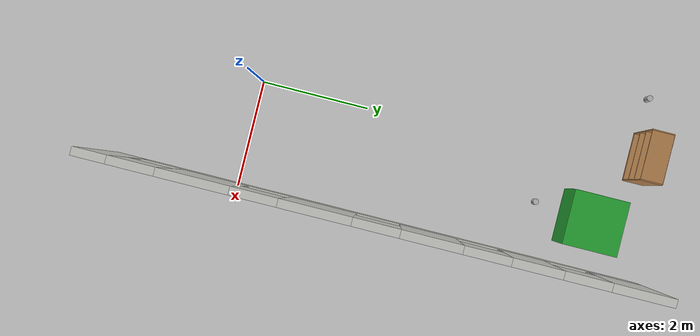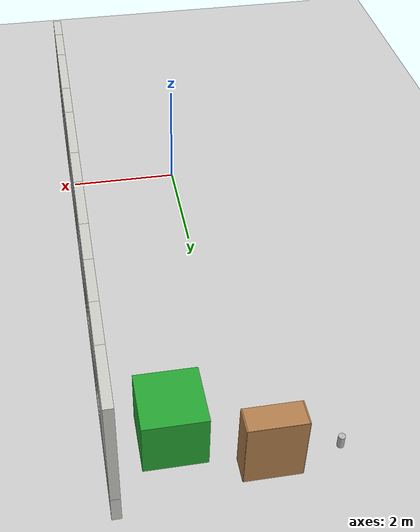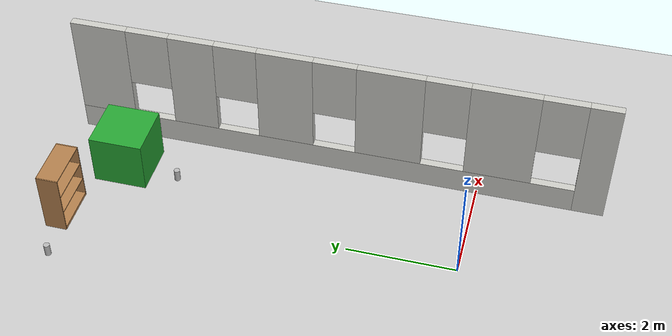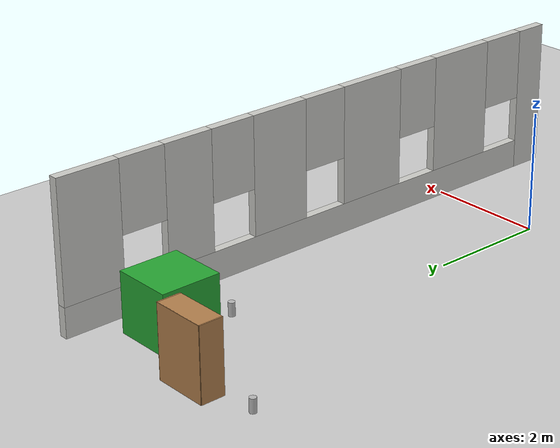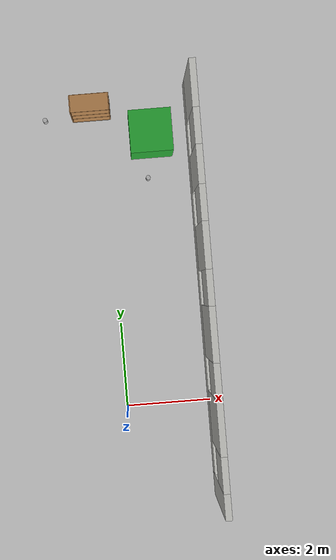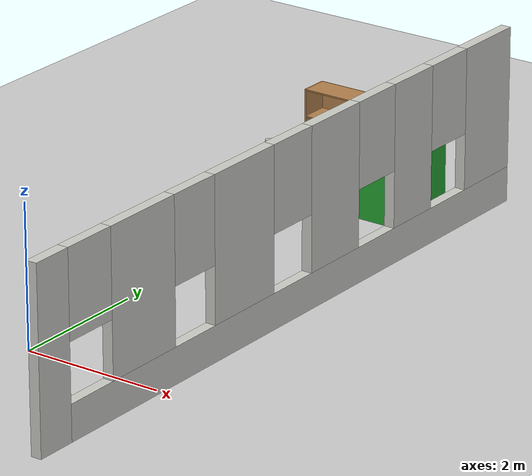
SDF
<sdf version="1.6">
 <world name="default">
  <model name="ground_plane">
   <static>1</static>
   <link name="link">
    <collision name="collision">
     <geometry><plane><normal>0 0 1</normal><size>100 100</size></plane></geometry>
     <surface><friction><ode><mu>100</mu><mu2>50</mu2></ode></friction></surface>
    </collision>
    <visual name="visual">
     <cast_shadows>0</cast_shadows>
     <geometry><plane><normal>0 0 1</normal><size>100 100</size></plane></geometry>
     <material>
      <script><uri>file://media/materials/scripts/gazebo.material</uri><name>Gazebo/Grey</name></script>
     </material>
    </visual>
   </link>
  </model>
  <model name="Untitled">
   <link name="link_0">
    <inertial>
     <mass>1</mass>
     <inertia>
      <ixx>0.166667</ixx>
      <ixy>0</ixy>
      <ixz>0</ixz>
      <iyy>0.166667</iyy>
      <iyz>0</iyz>
      <izz>0.166667</izz>
     </inertia>
    </inertial>
    <visual name="visual">
     <geometry><box><size>1 1 1</size></box></geometry>
     <material>
      <lighting>1</lighting>
      <script><uri>file://media/materials/scripts/gazebo.material</uri><name>Gazebo/Green</name></script>
      <shader type="pixel"><normal_map>__default__</normal_map></shader>
      <ambient>1 0 0 1</ambient>
      <diffuse>0.7 0.7 0.7 1</diffuse>
      <specular>0.01 0.01 0.01 1</specular>
      <emissive>0 0 0 1</emissive>
     </material>
    </visual>
    <collision name="collision">
     <geometry><box><size>1 1 1</size></box></geometry>
     <surface>
      <friction>
       <ode><mu>1</mu><mu2>1</mu2><fdir1>0 0 0</fdir1><slip1>0</slip1><slip2>0</slip2></ode>
       <torsional>
        <coefficient>1</coefficient>
        <patch_radius>0</patch_radius>
        <surface_radius>0</surface_radius>
        <use_patch_radius>1</use_patch_radius>
        <ode><slip>0</slip></ode>
       </torsional>
      </friction>
      <bounce><restitution_coefficient>0</restitution_coefficient><threshold>1e+06</threshold></bounce>
      <contact>
       <collide_without_contact>0</collide_without_contact>
       <collide_without_contact_bitmask>1</collide_without_contact_bitmask>
       <collide_bitmask>1</collide_bitmask>
       <ode>
        <soft_cfm>0</soft_cfm>
        <soft_erp>0.2</soft_erp>
        <kp>1e+13</kp>
        <kd>1</kd>
        <max_vel>0.01</max_vel>
        <min_depth>0</min_depth>
       </ode>
       <bullet>
        <split_impulse>1</split_impulse>
        <split_impulse_penetration_threshold>-0.01</split_impulse_penetration_threshold>
        <soft_cfm>0</soft_cfm>
        <soft_erp>0.2</soft_erp>
        <kp>1e+13</kp>
        <kd>1</kd>
       </bullet>
      </contact>
     </surface>
    </collision>
   </link>
   <static>0</static>
   <pose>1.05703 6.46393 0.499995 0 -1e-05 0</pose>
  </model>
  <model name="beer">
   <link name="link">
    <pose>0 0 0.115 0 -0 0</pose>
    <inertial>
     <mass>0.39</mass>
     <inertia><ixx>0.00058</ixx><ixy>0</ixy><ixz>0</ixz><iyy>0.00058</iyy><iyz>0</iyz><izz>0.00019</izz></inertia>
    </inertial>
    <collision name="collision">
     <geometry><cylinder><radius>0.055</radius><length>0.23</length></cylinder></geometry>
    </collision>
    <visual name="visual">
     <geometry><cylinder><radius>0.055</radius><length>0.23</length></cylinder></geometry>
     <material>
      <script>
       <uri>model://beer/materials/scripts</uri>
       <uri>model://beer/materials/textures</uri>
       <name>Beer/Diffuse</name>
      </script>
     </material>
    </visual>
   </link>
   <pose>-1.43567 7.03028 0.059992 2.7e-05 1.3e-05 0.000622</pose>
  </model>
  <model name="building">
   <link name="Wall_2">
    <pose>5.85 4.17477 0 0 -0 1.5708</pose>
    <visual name="Wall_2_Visual_1">
     <pose>0.288024 0 0.25 0 -0 0</pose>
     <geometry><box><size>9.42395 0.15 0.5</size></box></geometry>
     <material>
      <script><uri>file://media/materials/scripts/gazebo.material</uri><name>Gazebo/CeilingTiled</name></script>
      <ambient>0 0 1 1</ambient>
      <shader type="pixel"/>
      <diffuse>1 1 1 1</diffuse>
      <specular>0 0 0 1</specular>
      <emissive>0 0 0 1</emissive>
     </material>
     <meta><layer>0</layer></meta>
    </visual>
    <visual name="Wall_2_Visual_8">
     <pose>-1.99353 0 1.9 0 -0 0</pose>
     <geometry><box><size>0.8 0.15 1.2</size></box></geometry>
     <material>
      <script><uri>file://media/materials/scripts/gazebo.material</uri><name>Gazebo/CeilingTiled</name></script>
      <ambient>0 0 1 1</ambient>
      <shader type="pixel"/>
      <diffuse>1 1 1 1</diffuse>
      <specular>0 0 0 1</specular>
      <emissive>0 0 0 1</emissive>
     </material>
     <meta><layer>0</layer></meta>
    </visual>
    <visual name="Wall_2_Visual_6">
     <pose>4.47199 0 1.5 0 -0 0</pose>
     <geometry><box><size>1.05602 0.15 2</size></box></geometry>
     <material>
      <script><uri>file://media/materials/scripts/gazebo.material</uri><name>Gazebo/CeilingTiled</name></script>
      <ambient>0 0 1 1</ambient>
      <shader type="pixel"/>
      <diffuse>1 1 1 1</diffuse>
      <specular>0 0 0 1</specular>
      <emissive>0 0 0 1</emissive>
     </material>
     <meta><layer>0</layer></meta>
    </visual>
    <visual name="Wall_2_Visual_10">
     <pose>1.88272 0 1.9 0 -0 0</pose>
     <geometry><box><size>0.8 0.15 1.2</size></box></geometry>
     <material>
      <script><uri>file://media/materials/scripts/gazebo.material</uri><name>Gazebo/CeilingTiled</name></script>
      <ambient>0 0 1 1</ambient>
      <shader type="pixel"/>
      <diffuse>1 1 1 1</diffuse>
      <specular>0 0 0 1</specular>
      <emissive>0 0 0 1</emissive>
     </material>
     <meta><layer>0</layer></meta>
    </visual>
    <visual name="Wall_2_Visual_3">
     <pose>-0.978321 0 1.5 0 -0 0</pose>
     <geometry><box><size>1.23042 0.15 2</size></box></geometry>
     <material>
      <script><uri>file://media/materials/scripts/gazebo.material</uri><name>Gazebo/CeilingTiled</name></script>
      <ambient>0 0 1 1</ambient>
      <shader type="pixel"/>
      <diffuse>1 1 1 1</diffuse>
      <specular>0 0 0 1</specular>
      <emissive>0 0 0 1</emissive>
     </material>
     <meta><layer>0</layer></meta>
    </visual>
    <visual name="Wall_2_Visual_7">
     <pose>-4.02395 0 1.9 0 -0 0</pose>
     <geometry><box><size>0.8 0.15 1.2</size></box></geometry>
     <material>
      <script><uri>file://media/materials/scripts/gazebo.material</uri><name>Gazebo/CeilingTiled</name></script>
      <ambient>0 0 1 1</ambient>
      <shader type="pixel"/>
      <diffuse>1 1 1 1</diffuse>
      <specular>0 0 0 1</specular>
      <emissive>0 0 0 1</emissive>
     </material>
     <meta><layer>0</layer></meta>
    </visual>
    <visual name="Wall_2_Visual_9">
     <pose>0.036889 0 1.9 0 -0 0</pose>
     <geometry><box><size>0.8 0.15 1.2</size></box></geometry>
     <material>
      <script><uri>file://media/materials/scripts/gazebo.material</uri><name>Gazebo/CeilingTiled</name></script>
      <ambient>0 0 1 1</ambient>
      <shader type="pixel"/>
      <diffuse>1 1 1 1</diffuse>
      <specular>0 0 0 1</specular>
      <emissive>0 0 0 1</emissive>
     </material>
     <meta><layer>0</layer></meta>
    </visual>
    <visual name="Wall_2_Visual_0">
     <pose>-4.71198 0 1.25 0 -0 0</pose>
     <geometry><box><size>0.576049 0.15 2.5</size></box></geometry>
     <material>
      <script><uri>file://media/materials/scripts/gazebo.material</uri><name>Gazebo/CeilingTiled</name></script>
      <ambient>0 0 1 1</ambient>
      <shader type="pixel"/>
      <diffuse>1 1 1 1</diffuse>
      <specular>0 0 0 1</specular>
      <emissive>0 0 0 1</emissive>
     </material>
     <meta><layer>0</layer></meta>
    </visual>
    <visual name="Wall_2_Visual_4">
     <pose>0.959807 0 1.5 0 -0 0</pose>
     <geometry><box><size>1.04584 0.15 2</size></box></geometry>
     <material>
      <script><uri>file://media/materials/scripts/gazebo.material</uri><name>Gazebo/CeilingTiled</name></script>
      <ambient>0 0 1 1</ambient>
      <shader type="pixel"/>
      <diffuse>1 1 1 1</diffuse>
      <specular>0 0 0 1</specular>
      <emissive>0 0 0 1</emissive>
     </material>
     <meta><layer>0</layer></meta>
    </visual>
    <visual name="Wall_2_Visual_11">
     <pose>3.54398 0 1.9 0 -0 0</pose>
     <geometry><box><size>0.8 0.15 1.2</size></box></geometry>
     <material>
      <script><uri>file://media/materials/scripts/gazebo.material</uri><name>Gazebo/CeilingTiled</name></script>
      <ambient>0 0 1 1</ambient>
      <shader type="pixel"/>
      <diffuse>1 1 1 1</diffuse>
      <specular>0 0 0 1</specular>
      <emissive>0 0 0 1</emissive>
     </material>
     <meta><layer>0</layer></meta>
    </visual>
    <visual name="Wall_2_Visual_2">
     <pose>-3.00874 0 1.5 0 -0 0</pose>
     <geometry><box><size>1.23042 0.15 2</size></box></geometry>
     <material>
      <script><uri>file://media/materials/scripts/gazebo.material</uri><name>Gazebo/CeilingTiled</name></script>
      <ambient>0 0 1 1</ambient>
      <shader type="pixel"/>
      <diffuse>1 1 1 1</diffuse>
      <specular>0 0 0 1</specular>
      <emissive>0 0 0 1</emissive>
     </material>
     <meta><layer>0</layer></meta>
    </visual>
    <visual name="Wall_2_Visual_5">
     <pose>2.71335 0 1.5 0 -0 0</pose>
     <geometry><box><size>0.861252 0.15 2</size></box></geometry>
     <material>
      <script><uri>file://media/materials/scripts/gazebo.material</uri><name>Gazebo/CeilingTiled</name></script>
      <ambient>0 0 1 1</ambient>
      <shader type="pixel"/>
      <diffuse>1 1 1 1</diffuse>
      <specular>0 0 0 1</specular>
      <emissive>0 0 0 1</emissive>
     </material>
     <meta><layer>0</layer></meta>
    </visual>
    <collision name="Wall_2_Collision_6">
     <pose>4.47199 0 1.5 0 -0 0</pose>
     <geometry><box><size>1.05602 0.15 2</size></box></geometry>
     <surface>
      <friction>
       <ode><mu>1</mu><mu2>1</mu2><fdir1>0 0 0</fdir1><slip1>0</slip1><slip2>0</slip2></ode>
       <torsional>
        <coefficient>1</coefficient>
        <patch_radius>0</patch_radius>
        <surface_radius>0</surface_radius>
        <use_patch_radius>1</use_patch_radius>
        <ode><slip>0</slip></ode>
       </torsional>
      </friction>
      <bounce><restitution_coefficient>0</restitution_coefficient><threshold>1e+06</threshold></bounce>
      <contact>
       <collide_without_contact>0</collide_without_contact>
       <collide_without_contact_bitmask>1</collide_without_contact_bitmask>
       <collide_bitmask>1</collide_bitmask>
       <ode>
        <soft_cfm>0</soft_cfm>
        <soft_erp>0.2</soft_erp>
        <kp>1e+13</kp>
        <kd>1</kd>
        <max_vel>0.01</max_vel>
        <min_depth>0</min_depth>
       </ode>
       <bullet>
        <split_impulse>1</split_impulse>
        <split_impulse_penetration_threshold>-0.01</split_impulse_penetration_threshold>
        <soft_cfm>0</soft_cfm>
        <soft_erp>0.2</soft_erp>
        <kp>1e+13</kp>
        <kd>1</kd>
       </bullet>
      </contact>
     </surface>
    </collision>
    <collision name="Wall_2_Collision_10">
     <pose>1.88272 0 1.9 0 -0 0</pose>
     <geometry><box><size>0.8 0.15 1.2</size></box></geometry>
     <surface>
      <friction>
       <ode><mu>1</mu><mu2>1</mu2><fdir1>0 0 0</fdir1><slip1>0</slip1><slip2>0</slip2></ode>
       <torsional>
        <coefficient>1</coefficient>
        <patch_radius>0</patch_radius>
        <surface_radius>0</surface_radius>
        <use_patch_radius>1</use_patch_radius>
        <ode><slip>0</slip></ode>
       </torsional>
      </friction>
      <bounce><restitution_coefficient>0</restitution_coefficient><threshold>1e+06</threshold></bounce>
      <contact>
       <collide_without_contact>0</collide_without_contact>
       <collide_without_contact_bitmask>1</collide_without_contact_bitmask>
       <collide_bitmask>1</collide_bitmask>
       <ode>
        <soft_cfm>0</soft_cfm>
        <soft_erp>0.2</soft_erp>
        <kp>1e+13</kp>
        <kd>1</kd>
        <max_vel>0.01</max_vel>
        <min_depth>0</min_depth>
       </ode>
       <bullet>
        <split_impulse>1</split_impulse>
        <split_impulse_penetration_threshold>-0.01</split_impulse_penetration_threshold>
        <soft_cfm>0</soft_cfm>
        <soft_erp>0.2</soft_erp>
        <kp>1e+13</kp>
        <kd>1</kd>
       </bullet>
      </contact>
     </surface>
    </collision>
    <collision name="Wall_2_Collision_2">
     <pose>-3.00874 0 1.5 0 -0 0</pose>
     <geometry><box><size>1.23042 0.15 2</size></box></geometry>
     <surface>
      <friction>
       <ode><mu>1</mu><mu2>1</mu2><fdir1>0 0 0</fdir1><slip1>0</slip1><slip2>0</slip2></ode>
       <torsional>
        <coefficient>1</coefficient>
        <patch_radius>0</patch_radius>
        <surface_radius>0</surface_radius>
        <use_patch_radius>1</use_patch_radius>
        <ode><slip>0</slip></ode>
       </torsional>
      </friction>
      <bounce><restitution_coefficient>0</restitution_coefficient><threshold>1e+06</threshold></bounce>
      <contact>
       <collide_without_contact>0</collide_without_contact>
       <collide_without_contact_bitmask>1</collide_without_contact_bitmask>
       <collide_bitmask>1</collide_bitmask>
       <ode>
        <soft_cfm>0</soft_cfm>
        <soft_erp>0.2</soft_erp>
        <kp>1e+13</kp>
        <kd>1</kd>
        <max_vel>0.01</max_vel>
        <min_depth>0</min_depth>
       </ode>
       <bullet>
        <split_impulse>1</split_impulse>
        <split_impulse_penetration_threshold>-0.01</split_impulse_penetration_threshold>
        <soft_cfm>0</soft_cfm>
        <soft_erp>0.2</soft_erp>
        <kp>1e+13</kp>
        <kd>1</kd>
       </bullet>
      </contact>
     </surface>
    </collision>
    <collision name="Wall_2_Collision_7">
     <pose>-4.02395 0 1.9 0 -0 0</pose>
     <geometry><box><size>0.8 0.15 1.2</size></box></geometry>
     <surface>
      <friction>
       <ode><mu>1</mu><mu2>1</mu2><fdir1>0 0 0</fdir1><slip1>0</slip1><slip2>0</slip2></ode>
       <torsional>
        <coefficient>1</coefficient>
        <patch_radius>0</patch_radius>
        <surface_radius>0</surface_radius>
        <use_patch_radius>1</use_patch_radius>
        <ode><slip>0</slip></ode>
       </torsional>
      </friction>
      <bounce><restitution_coefficient>0</restitution_coefficient><threshold>1e+06</threshold></bounce>
      <contact>
       <collide_without_contact>0</collide_without_contact>
       <collide_without_contact_bitmask>1</collide_without_contact_bitmask>
       <collide_bitmask>1</collide_bitmask>
       <ode>
        <soft_cfm>0</soft_cfm>
        <soft_erp>0.2</soft_erp>
        <kp>1e+13</kp>
        <kd>1</kd>
        <max_vel>0.01</max_vel>
        <min_depth>0</min_depth>
       </ode>
       <bullet>
        <split_impulse>1</split_impulse>
        <split_impulse_penetration_threshold>-0.01</split_impulse_penetration_threshold>
        <soft_cfm>0</soft_cfm>
        <soft_erp>0.2</soft_erp>
        <kp>1e+13</kp>
        <kd>1</kd>
       </bullet>
      </contact>
     </surface>
    </collision>
    <collision name="Wall_2_Collision_4">
     <pose>0.959807 0 1.5 0 -0 0</pose>
     <geometry><box><size>1.04584 0.15 2</size></box></geometry>
     <surface>
      <friction>
       <ode><mu>1</mu><mu2>1</mu2><fdir1>0 0 0</fdir1><slip1>0</slip1><slip2>0</slip2></ode>
       <torsional>
        <coefficient>1</coefficient>
        <patch_radius>0</patch_radius>
        <surface_radius>0</surface_radius>
        <use_patch_radius>1</use_patch_radius>
        <ode><slip>0</slip></ode>
       </torsional>
      </friction>
      <bounce><restitution_coefficient>0</restitution_coefficient><threshold>1e+06</threshold></bounce>
      <contact>
       <collide_without_contact>0</collide_without_contact>
       <collide_without_contact_bitmask>1</collide_without_contact_bitmask>
       <collide_bitmask>1</collide_bitmask>
       <ode>
        <soft_cfm>0</soft_cfm>
        <soft_erp>0.2</soft_erp>
        <kp>1e+13</kp>
        <kd>1</kd>
        <max_vel>0.01</max_vel>
        <min_depth>0</min_depth>
       </ode>
       <bullet>
        <split_impulse>1</split_impulse>
        <split_impulse_penetration_threshold>-0.01</split_impulse_penetration_threshold>
        <soft_cfm>0</soft_cfm>
        <soft_erp>0.2</soft_erp>
        <kp>1e+13</kp>
        <kd>1</kd>
       </bullet>
      </contact>
     </surface>
    </collision>
    <collision name="Wall_2_Collision_1">
     <pose>0.288024 0 0.25 0 -0 0</pose>
     <geometry><box><size>9.42395 0.15 0.5</size></box></geometry>
     <surface>
      <friction>
       <ode><mu>1</mu><mu2>1</mu2><fdir1>0 0 0</fdir1><slip1>0</slip1><slip2>0</slip2></ode>
       <torsional>
        <coefficient>1</coefficient>
        <patch_radius>0</patch_radius>
        <surface_radius>0</surface_radius>
        <use_patch_radius>1</use_patch_radius>
        <ode><slip>0</slip></ode>
       </torsional>
      </friction>
      <bounce><restitution_coefficient>0</restitution_coefficient><threshold>1e+06</threshold></bounce>
      <contact>
       <collide_without_contact>0</collide_without_contact>
       <collide_without_contact_bitmask>1</collide_without_contact_bitmask>
       <collide_bitmask>1</collide_bitmask>
       <ode>
        <soft_cfm>0</soft_cfm>
        <soft_erp>0.2</soft_erp>
        <kp>1e+13</kp>
        <kd>1</kd>
        <max_vel>0.01</max_vel>
        <min_depth>0</min_depth>
       </ode>
       <bullet>
        <split_impulse>1</split_impulse>
        <split_impulse_penetration_threshold>-0.01</split_impulse_penetration_threshold>
        <soft_cfm>0</soft_cfm>
        <soft_erp>0.2</soft_erp>
        <kp>1e+13</kp>
        <kd>1</kd>
       </bullet>
      </contact>
     </surface>
    </collision>
    <collision name="Wall_2_Collision_0">
     <pose>-4.71198 0 1.25 0 -0 0</pose>
     <geometry><box><size>0.576049 0.15 2.5</size></box></geometry>
     <surface>
      <friction>
       <ode><mu>1</mu><mu2>1</mu2><fdir1>0 0 0</fdir1><slip1>0</slip1><slip2>0</slip2></ode>
       <torsional>
        <coefficient>1</coefficient>
        <patch_radius>0</patch_radius>
        <surface_radius>0</surface_radius>
        <use_patch_radius>1</use_patch_radius>
        <ode><slip>0</slip></ode>
       </torsional>
      </friction>
      <bounce><restitution_coefficient>0</restitution_coefficient><threshold>1e+06</threshold></bounce>
      <contact>
       <collide_without_contact>0</collide_without_contact>
       <collide_without_contact_bitmask>1</collide_without_contact_bitmask>
       <collide_bitmask>1</collide_bitmask>
       <ode>
        <soft_cfm>0</soft_cfm>
        <soft_erp>0.2</soft_erp>
        <kp>1e+13</kp>
        <kd>1</kd>
        <max_vel>0.01</max_vel>
        <min_depth>0</min_depth>
       </ode>
       <bullet>
        <split_impulse>1</split_impulse>
        <split_impulse_penetration_threshold>-0.01</split_impulse_penetration_threshold>
        <soft_cfm>0</soft_cfm>
        <soft_erp>0.2</soft_erp>
        <kp>1e+13</kp>
        <kd>1</kd>
       </bullet>
      </contact>
     </surface>
    </collision>
    <collision name="Wall_2_Collision_8">
     <pose>-1.99353 0 1.9 0 -0 0</pose>
     <geometry><box><size>0.8 0.15 1.2</size></box></geometry>
     <surface>
      <friction>
       <ode><mu>1</mu><mu2>1</mu2><fdir1>0 0 0</fdir1><slip1>0</slip1><slip2>0</slip2></ode>
       <torsional>
        <coefficient>1</coefficient>
        <patch_radius>0</patch_radius>
        <surface_radius>0</surface_radius>
        <use_patch_radius>1</use_patch_radius>
        <ode><slip>0</slip></ode>
       </torsional>
      </friction>
      <bounce><restitution_coefficient>0</restitution_coefficient><threshold>1e+06</threshold></bounce>
      <contact>
       <collide_without_contact>0</collide_without_contact>
       <collide_without_contact_bitmask>1</collide_without_contact_bitmask>
       <collide_bitmask>1</collide_bitmask>
       <ode>
        <soft_cfm>0</soft_cfm>
        <soft_erp>0.2</soft_erp>
        <kp>1e+13</kp>
        <kd>1</kd>
        <max_vel>0.01</max_vel>
        <min_depth>0</min_depth>
       </ode>
       <bullet>
        <split_impulse>1</split_impulse>
        <split_impulse_penetration_threshold>-0.01</split_impulse_penetration_threshold>
        <soft_cfm>0</soft_cfm>
        <soft_erp>0.2</soft_erp>
        <kp>1e+13</kp>
        <kd>1</kd>
       </bullet>
      </contact>
     </surface>
    </collision>
    <collision name="Wall_2_Collision_3">
     <pose>-0.978321 0 1.5 0 -0 0</pose>
     <geometry><box><size>1.23042 0.15 2</size></box></geometry>
     <surface>
      <friction>
       <ode><mu>1</mu><mu2>1</mu2><fdir1>0 0 0</fdir1><slip1>0</slip1><slip2>0</slip2></ode>
       <torsional>
        <coefficient>1</coefficient>
        <patch_radius>0</patch_radius>
        <surface_radius>0</surface_radius>
        <use_patch_radius>1</use_patch_radius>
        <ode><slip>0</slip></ode>
       </torsional>
      </friction>
      <bounce><restitution_coefficient>0</restitution_coefficient><threshold>1e+06</threshold></bounce>
      <contact>
       <collide_without_contact>0</collide_without_contact>
       <collide_without_contact_bitmask>1</collide_without_contact_bitmask>
       <collide_bitmask>1</collide_bitmask>
       <ode>
        <soft_cfm>0</soft_cfm>
        <soft_erp>0.2</soft_erp>
        <kp>1e+13</kp>
        <kd>1</kd>
        <max_vel>0.01</max_vel>
        <min_depth>0</min_depth>
       </ode>
       <bullet>
        <split_impulse>1</split_impulse>
        <split_impulse_penetration_threshold>-0.01</split_impulse_penetration_threshold>
        <soft_cfm>0</soft_cfm>
        <soft_erp>0.2</soft_erp>
        <kp>1e+13</kp>
        <kd>1</kd>
       </bullet>
      </contact>
     </surface>
    </collision>
    <collision name="Wall_2_Collision_5">
     <pose>2.71335 0 1.5 0 -0 0</pose>
     <geometry><box><size>0.861252 0.15 2</size></box></geometry>
     <surface>
      <friction>
       <ode><mu>1</mu><mu2>1</mu2><fdir1>0 0 0</fdir1><slip1>0</slip1><slip2>0</slip2></ode>
       <torsional>
        <coefficient>1</coefficient>
        <patch_radius>0</patch_radius>
        <surface_radius>0</surface_radius>
        <use_patch_radius>1</use_patch_radius>
        <ode><slip>0</slip></ode>
       </torsional>
      </friction>
      <bounce><restitution_coefficient>0</restitution_coefficient><threshold>1e+06</threshold></bounce>
      <contact>
       <collide_without_contact>0</collide_without_contact>
       <collide_without_contact_bitmask>1</collide_without_contact_bitmask>
       <collide_bitmask>1</collide_bitmask>
       <ode>
        <soft_cfm>0</soft_cfm>
        <soft_erp>0.2</soft_erp>
        <kp>1e+13</kp>
        <kd>1</kd>
        <max_vel>0.01</max_vel>
        <min_depth>0</min_depth>
       </ode>
       <bullet>
        <split_impulse>1</split_impulse>
        <split_impulse_penetration_threshold>-0.01</split_impulse_penetration_threshold>
        <soft_cfm>0</soft_cfm>
        <soft_erp>0.2</soft_erp>
        <kp>1e+13</kp>
        <kd>1</kd>
       </bullet>
      </contact>
     </surface>
    </collision>
    <collision name="Wall_2_Collision_11">
     <pose>3.54398 0 1.9 0 -0 0</pose>
     <geometry><box><size>0.8 0.15 1.2</size></box></geometry>
     <surface>
      <friction>
       <ode><mu>1</mu><mu2>1</mu2><fdir1>0 0 0</fdir1><slip1>0</slip1><slip2>0</slip2></ode>
       <torsional>
        <coefficient>1</coefficient>
        <patch_radius>0</patch_radius>
        <surface_radius>0</surface_radius>
        <use_patch_radius>1</use_patch_radius>
        <ode><slip>0</slip></ode>
       </torsional>
      </friction>
      <bounce><restitution_coefficient>0</restitution_coefficient><threshold>1e+06</threshold></bounce>
      <contact>
       <collide_without_contact>0</collide_without_contact>
       <collide_without_contact_bitmask>1</collide_without_contact_bitmask>
       <collide_bitmask>1</collide_bitmask>
       <ode>
        <soft_cfm>0</soft_cfm>
        <soft_erp>0.2</soft_erp>
        <kp>1e+13</kp>
        <kd>1</kd>
        <max_vel>0.01</max_vel>
        <min_depth>0</min_depth>
       </ode>
       <bullet>
        <split_impulse>1</split_impulse>
        <split_impulse_penetration_threshold>-0.01</split_impulse_penetration_threshold>
        <soft_cfm>0</soft_cfm>
        <soft_erp>0.2</soft_erp>
        <kp>1e+13</kp>
        <kd>1</kd>
       </bullet>
      </contact>
     </surface>
    </collision>
    <collision name="Wall_2_Collision_9">
     <pose>0.036889 0 1.9 0 -0 0</pose>
     <geometry><box><size>0.8 0.15 1.2</size></box></geometry>
     <surface>
      <friction>
       <ode><mu>1</mu><mu2>1</mu2><fdir1>0 0 0</fdir1><slip1>0</slip1><slip2>0</slip2></ode>
       <torsional>
        <coefficient>1</coefficient>
        <patch_radius>0</patch_radius>
        <surface_radius>0</surface_radius>
        <use_patch_radius>1</use_patch_radius>
        <ode><slip>0</slip></ode>
       </torsional>
      </friction>
      <bounce><restitution_coefficient>0</restitution_coefficient><threshold>1e+06</threshold></bounce>
      <contact>
       <collide_without_contact>0</collide_without_contact>
       <collide_without_contact_bitmask>1</collide_without_contact_bitmask>
       <collide_bitmask>1</collide_bitmask>
       <ode>
        <soft_cfm>0</soft_cfm>
        <soft_erp>0.2</soft_erp>
        <kp>1e+13</kp>
        <kd>1</kd>
        <max_vel>0.01</max_vel>
        <min_depth>0</min_depth>
       </ode>
       <bullet>
        <split_impulse>1</split_impulse>
        <split_impulse_penetration_threshold>-0.01</split_impulse_penetration_threshold>
        <soft_cfm>0</soft_cfm>
        <soft_erp>0.2</soft_erp>
        <kp>1e+13</kp>
        <kd>1</kd>
       </bullet>
      </contact>
     </surface>
    </collision>
   </link>
   <static>1</static>
   <pose>-3.83214 -1.50097 0 0 -0 0</pose>
  </model>
  <model name="bookshelf_0">
   <static>1</static>
   <link name="link">
    <inertial><mass>1</mass></inertial>
    <collision name="back">
     <pose>0 0.005 0.6 0 -0 0</pose>
     <geometry><box><size>0.9 0.01 1.2</size></box></geometry>
    </collision>
    <visual name="visual1">
     <pose>0 0.005 0.6 0 -0 0</pose>
     <geometry><box><size>0.9 0.01 1.2</size></box></geometry>
     <material>
      <script><uri>file://media/materials/scripts/gazebo.material</uri><name>Gazebo/Wood</name></script>
     </material>
    </visual>
    <collision name="left_side">
     <pose>0.45 -0.195 0.6 0 -0 0</pose>
     <geometry><box><size>0.02 0.4 1.2</size></box></geometry>
    </collision>
    <visual name="visual2">
     <pose>0.45 -0.195 0.6 0 -0 0</pose>
     <geometry><box><size>0.02 0.4 1.2</size></box></geometry>
     <material>
      <script><uri>file://media/materials/scripts/gazebo.material</uri><name>Gazebo/Wood</name></script>
     </material>
    </visual>
    <collision name="right_side">
     <pose>-0.45 -0.195 0.6 0 -0 0</pose>
     <geometry><box><size>0.02 0.4 1.2</size></box></geometry>
    </collision>
    <visual name="visual3">
     <pose>-0.45 -0.195 0.6 0 -0 0</pose>
     <geometry><box><size>0.02 0.4 1.2</size></box></geometry>
     <material>
      <script><uri>file://media/materials/scripts/gazebo.material</uri><name>Gazebo/Wood</name></script>
     </material>
    </visual>
    <collision name="bottom">
     <pose>0 -0.195 0.03 0 -0 0</pose>
     <geometry><box><size>0.88 0.4 0.06</size></box></geometry>
    </collision>
    <visual name="visual4">
     <pose>0 -0.195 0.03 0 -0 0</pose>
     <geometry><box><size>0.88 0.4 0.06</size></box></geometry>
     <material>
      <script><uri>file://media/materials/scripts/gazebo.material</uri><name>Gazebo/Wood</name></script>
     </material>
    </visual>
    <collision name="top">
     <pose>0 -0.195 1.19 0 -0 0</pose>
     <geometry><box><size>0.88 0.4 0.02</size></box></geometry>
    </collision>
    <visual name="visual5">
     <pose>0 -0.195 1.19 0 -0 0</pose>
     <geometry><box><size>0.88 0.4 0.02</size></box></geometry>
     <material>
      <script><uri>file://media/materials/scripts/gazebo.material</uri><name>Gazebo/Wood</name></script>
     </material>
    </visual>
    <collision name="low_shelf">
     <pose>0 -0.195 0.43 0 -0 0</pose>
     <geometry><box><size>0.88 0.4 0.02</size></box></geometry>
    </collision>
    <visual name="visual6">
     <pose>0 -0.195 0.43 0 -0 0</pose>
     <geometry><box><size>0.88 0.4 0.02</size></box></geometry>
     <material>
      <script><uri>file://media/materials/scripts/gazebo.material</uri><name>Gazebo/Wood</name></script>
     </material>
    </visual>
    <collision name="high_shelf">
     <pose>0 -0.195 0.8 0 -0 0</pose>
     <geometry><box><size>0.88 0.4 0.02</size></box></geometry>
    </collision>
    <visual name="visual7">
     <pose>0 -0.195 0.8 0 -0 0</pose>
     <geometry><box><size>0.88 0.4 0.02</size></box></geometry>
     <material>
      <script><uri>file://media/materials/scripts/gazebo.material</uri><name>Gazebo/Wood</name></script>
     </material>
    </visual>
   </link>
   <pose>-0.319714 7.36704 0 0 -0 0</pose>
  </model>
  <model name="beer_0">
   <link name="link">
    <pose>0 0 0.115 0 -0 0</pose>
    <inertial>
     <mass>0.39</mass>
     <inertia><ixx>0.00058</ixx><ixy>0</ixy><ixz>0</ixz><iyy>0.00058</iyy><iyz>0</iyz><izz>0.00019</izz></inertia>
    </inertial>
    <collision name="collision">
     <geometry><cylinder><radius>0.055</radius><length>0.23</length></cylinder></geometry>
    </collision>
    <visual name="visual">
     <geometry><cylinder><radius>0.055</radius><length>0.23</length></cylinder></geometry>
     <material>
      <script>
       <uri>model://beer/materials/scripts</uri>
       <uri>model://beer/materials/textures</uri>
       <name>Beer/Diffuse</name>
      </script>
     </material>
    </visual>
   </link>
   <pose>0.930986 5.4657 -2e-06 0 0 -2.2e-05</pose>
  </model>
 </world>
</sdf>
